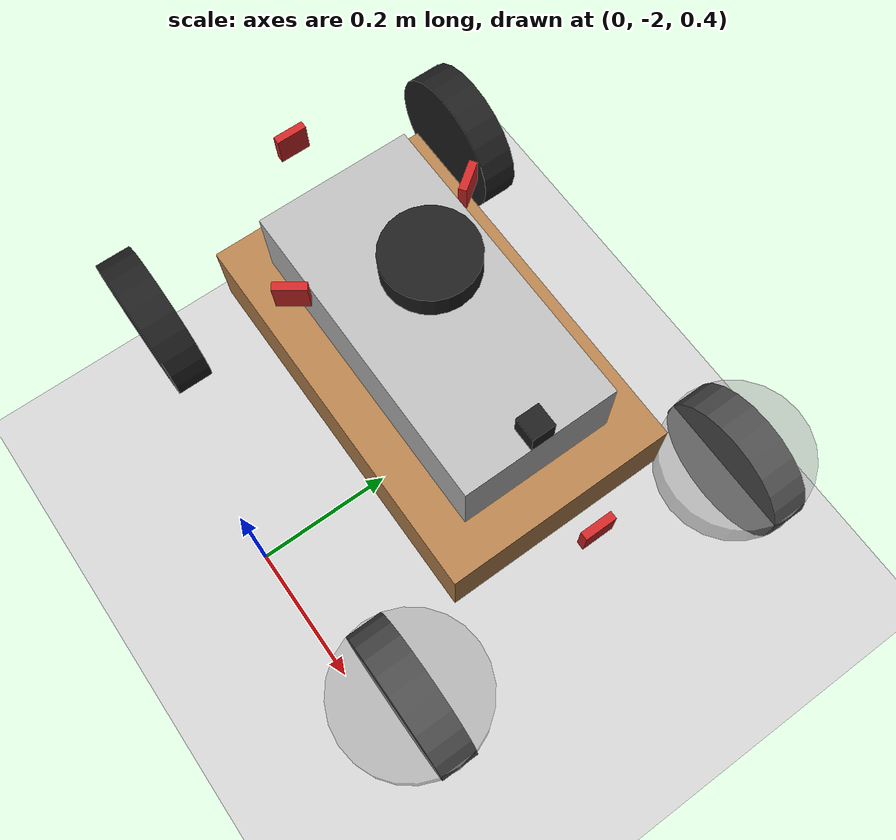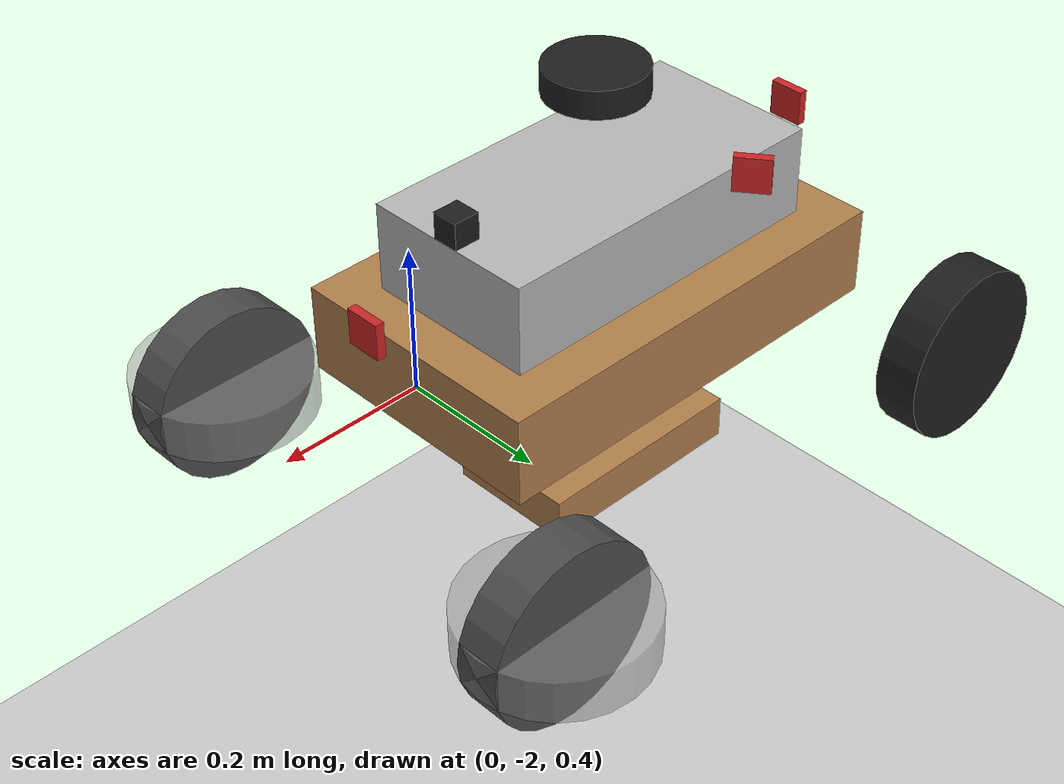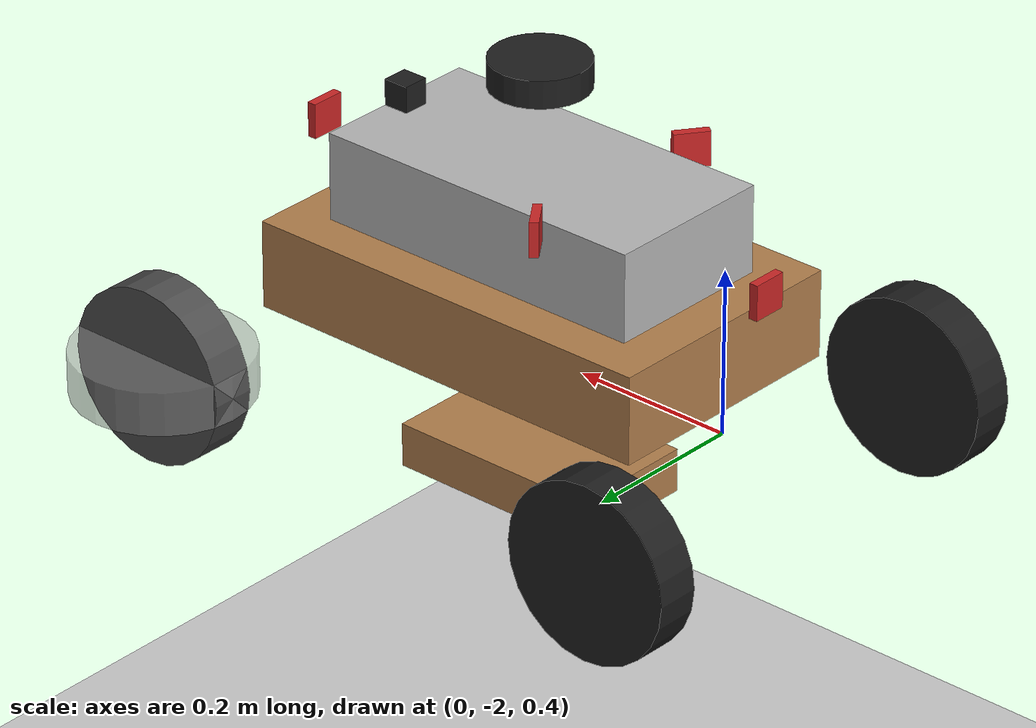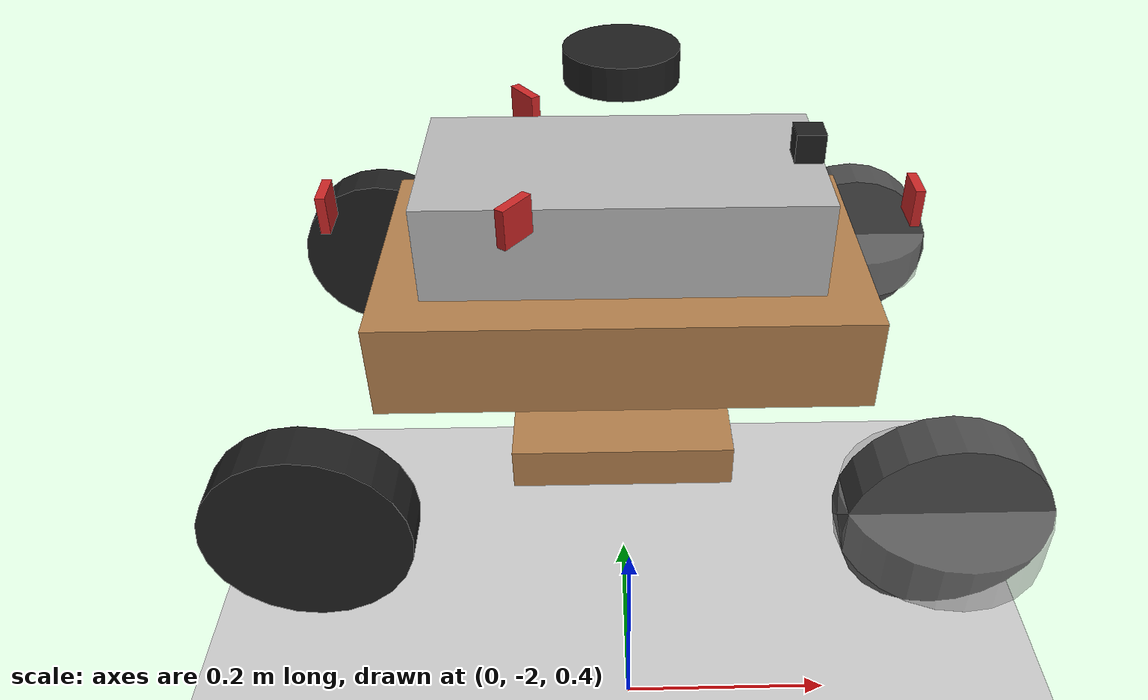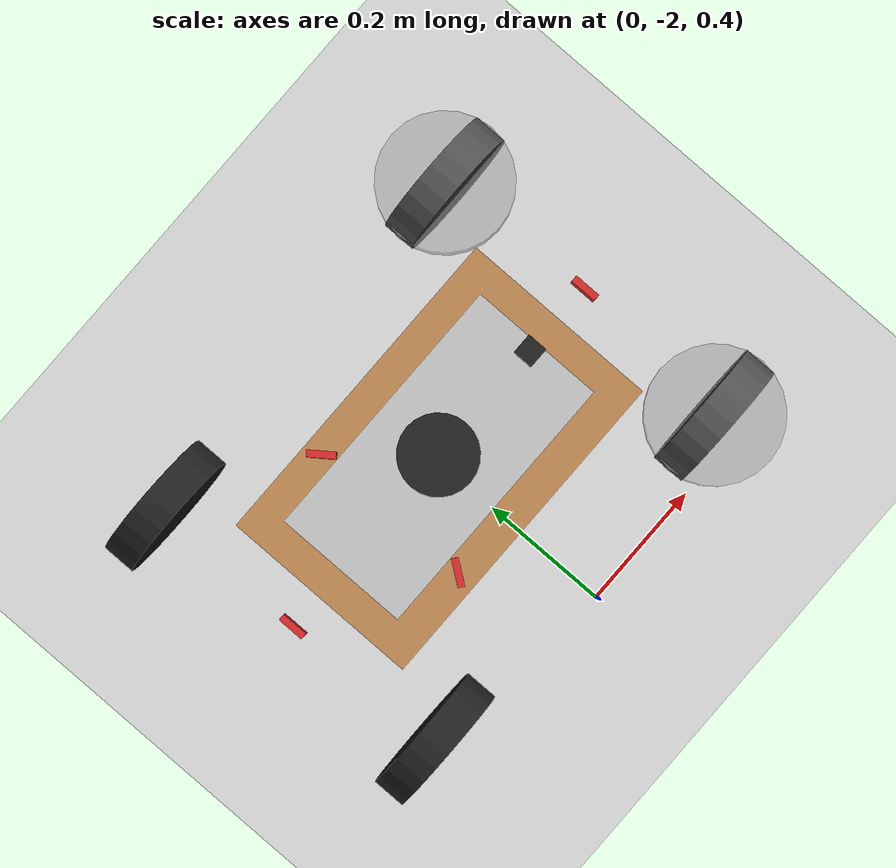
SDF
<sdf version="1.6">
 <world name="default">
  <include><uri>model://ground_plane</uri></include>
  <include><uri>model://sun</uri></include>
  <scene><shadows>false</shadows></scene>
  <physics type="ode">
   <real_time_update_rate>1000.0</real_time_update_rate>
   <max_step_size>0.001</max_step_size>
   <real_time_factor>1</real_time_factor>
   <ode>
    <solver>
     <type>quick</type>
     <iters>150</iters>
     <precon_iters>0</precon_iters>
     <sor>1.400000</sor>
     <use_dynamic_moi_rescaling>1</use_dynamic_moi_rescaling>
    </solver>
    <constraints>
     <cfm>0.00001</cfm>
     <erp>0.2</erp>
     <contact_max_correcting_vel>2000.000000</contact_max_correcting_vel>
     <contact_surface_layer>0.01000</contact_surface_layer>
    </constraints>
   </ode>
  </physics>
  <include><pose>0 -1.7 0.5 0.0 0.0 0</pose><uri>model://dorothy_ackermann</uri></include>
 </world>
</sdf>

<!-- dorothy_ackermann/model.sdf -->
<sdf version='1.7'>
  <model name='dorothy'>
    <link name='base_footprint'>
      <inertial>
        <pose>0 0 0 0 -0 0</pose>
        <mass>1</mass>
        <inertia>
          <ixx>0.00208333</ixx>
          <ixy>0</ixy>
          <ixz>0</ixz>
          <iyy>0.00541667</iyy>
          <iyz>0</iyz>
          <izz>0.00541667</izz>
        </inertia>
      </inertial>
      <visual name='base_footprint_visual'>
        <pose>0 0 0 0 -0 0</pose>
        <geometry>
          <box>
            <size>0.25 0.15 0.05</size>
          </box>
        </geometry>
        <material>
          <script>
            <name>Gazebo/Wood</name>
            <uri>file://media/materials/scripts/gazebo.material</uri>
          </script>
        </material>
      </visual>
    </link>
    <joint name='footprint_joint' type='fixed'>
      <pose relative_to='base_footprint'>0 0 0.2 0 0 -3.14159</pose>
      <parent>base_footprint</parent>
      <child>base_link</child>
      <axis>
        <dynamics>
          <spring_reference>0</spring_reference>
          <spring_stiffness>0</spring_stiffness>
        </dynamics>
        <xyz>0 0 1</xyz>
        <limit>
          <lower>-1e+16</lower>
          <upper>1e+16</upper>
        </limit>
      </axis>
      <physics>
        <ode>
          <limit>
            <cfm>0</cfm>
            <erp>0.2</erp>
          </limit>
        </ode>
      </physics>
    </joint>
    <link name='base_link'>
      <pose relative_to='footprint_joint'>0 0 0 0 -0 0</pose>
      <inertial>
        <pose>0 0 0 0 -0 0</pose>
        <mass>8</mass>
        <inertia>
          <ixx>0.0666667</ixx>
          <ixy>0</ixy>
          <ixz>0</ixz>
          <iyy>0.173333</iyy>
          <iyz>0</iyz>
          <izz>0.173333</izz>
        </inertia>
      </inertial>
      <collision name='base_link_collision'>
        <pose>0 0 0 0 -0 0</pose>
        <geometry>
          <box>
            <size>0.5 0.3 0.1</size>
          </box>
        </geometry>
        <surface>
          <contact>
            <ode/>
          </contact>
          <friction>
            <ode/>
          </friction>
        </surface>
      </collision>
      <visual name='base_link_visual'>
        <pose>0 0 0 0 -0 0</pose>
        <geometry>
          <box>
            <size>0.5 0.3 0.1</size>
          </box>
        </geometry>
        <material>
          <script>
            <name>Gazebo/Wood</name>
            <uri>file://media/materials/scripts/gazebo.material</uri>
          </script>
        </material>
      </visual>
    </link>
    <joint name='bl_axle' type='revolute'>
      <pose relative_to='base_link'>0.3 -0.25 -0.1 1.5708 -0 0</pose>
      <parent>base_link</parent>
      <child>bl_1</child>
      <axis>
        <xyz>0 0 1</xyz>
        <limit>
          <effort>20</effort>
          <velocity>20</velocity>
          <lower>-1e+16</lower>
          <upper>1e+16</upper>
        </limit>
        <dynamics>
          <spring_reference>0</spring_reference>
          <spring_stiffness>0</spring_stiffness>
        </dynamics>
      </axis>
    </joint>
    <link name='bl_1'>
      <pose relative_to='bl_axle'>0 0 0 0 -0 0</pose>
      <inertial>
        <pose>0 0 0 0 -0 0</pose>
        <mass>0.3</mass>
        <inertia>
          <ixx>0.0008125</ixx>
          <ixy>0</ixy>
          <ixz>0</ixz>
          <iyy>0.0008125</iyy>
          <iyz>0</iyz>
          <izz>0.0015</izz>
        </inertia>
      </inertial>
      <collision name='bl_1_collision'>
        <pose>0 0 0 0 -0 0</pose>
        <geometry>
          <cylinder>
            <length>0.05</length>
            <radius>0.1</radius>
          </cylinder>
        </geometry>
        <surface>
          <contact>
            <ode>
              <kp>100000</kp>
              <kd>10</kd>
            </ode>
          </contact>
          <friction>
            <ode>
              <mu>1</mu>
              <mu2>1</mu2>
            </ode>
          </friction>
        </surface>
      </collision>
      <visual name='bl_1_visual'>
        <pose>0 0 0 0 -0 0</pose>
        <geometry>
          <cylinder>
            <length>0.05</length>
            <radius>0.1</radius>
          </cylinder>
        </geometry>
        <material>
          <script>
            <name>Gazebo/Black</name>
            <uri>file://media/materials/scripts/gazebo.material</uri>
          </script>
        </material>
      </visual>
      <self_collide>1</self_collide>
      <slip1>100</slip1>
    </link>
    <joint name='br_axle' type='revolute'>
      <pose relative_to='base_link'>0.3 0.25 -0.1 1.5708 -0 0</pose>
      <parent>base_link</parent>
      <child>br_1</child>
      <axis>
        <xyz>0 0 1</xyz>
        <limit>
          <effort>20</effort>
          <velocity>20</velocity>
          <lower>-1e+16</lower>
          <upper>1e+16</upper>
        </limit>
        <dynamics>
          <spring_reference>0</spring_reference>
          <spring_stiffness>0</spring_stiffness>
        </dynamics>
      </axis>
    </joint>
    <link name='br_1'>
      <pose relative_to='br_axle'>0 0 0 0 -0 0</pose>
      <inertial>
        <pose>0 0 0 0 -0 0</pose>
        <mass>0.3</mass>
        <inertia>
          <ixx>0.0008125</ixx>
          <ixy>0</ixy>
          <ixz>0</ixz>
          <iyy>0.0008125</iyy>
          <iyz>0</iyz>
          <izz>0.0015</izz>
        </inertia>
      </inertial>
      <collision name='br_1_collision'>
        <pose>0 0 0 0 -0 0</pose>
        <geometry>
          <cylinder>
            <length>0.05</length>
            <radius>0.1</radius>
          </cylinder>
        </geometry>
        <surface>
          <contact>
            <ode>
              <kp>100000</kp>
              <kd>10</kd>
            </ode>
          </contact>
          <friction>
            <ode>
              <mu>1</mu>
              <mu2>1</mu2>
            </ode>
          </friction>
        </surface>
      </collision>
      <visual name='br_1_visual'>
        <pose>0 0 0 0 -0 0</pose>
        <geometry>
          <cylinder>
            <length>0.05</length>
            <radius>0.1</radius>
          </cylinder>
        </geometry>
        <material>
          <script>
            <name>Gazebo/Black</name>
            <uri>file://media/materials/scripts/gazebo.material</uri>
          </script>
        </material>
      </visual>
      <self_collide>1</self_collide>
      <slip1>100</slip1>
    </link>
    <joint name='l_steer' type='revolute'>
      <pose relative_to='base_link'>-0.3 -0.25 -0.1 0 -0 0</pose>
      <parent>base_link</parent>
      <child>l_steer_1</child>
      <axis>
        <xyz>0 0 1</xyz>
        <limit>
          <lower>-0.95</lower>
          <upper>0.95</upper>
          <effort>100</effort>
          <velocity>100</velocity>
        </limit>
        <dynamics>
          <damping>0</damping>
          <friction>1</friction>
          <spring_reference>0</spring_reference>
          <spring_stiffness>0</spring_stiffness>
        </dynamics>
      </axis>
    </joint>
    <link name='l_steer_1'>
      <pose relative_to='l_steer'>0 0 0 0 -0 0</pose>
      <inertial>
        <pose>0.003381 0 0.02162 0 -0 0</pose>
        <mass>1</mass>
        <inertia>
          <ixx>1</ixx>
          <ixy>0</ixy>
          <ixz>0</ixz>
          <iyy>1</iyy>
          <iyz>0</iyz>
          <izz>1</izz>
        </inertia>
      </inertial>
      <visual name='l_steer_1_visual'>
        <pose>0 0 0 0 -0 0</pose>
        <geometry>
          <cylinder>
            <length>0.05</length>
            <radius>0.1</radius>
          </cylinder>
        </geometry>
        <material>
          <script>
            <name>Gazebo/GreyTransparent</name>
            <uri>file://media/materials/scripts/gazebo.material</uri>
          </script>
        </material>
      </visual>
      <self_collide>1</self_collide>
    </link>
    <joint name='fl_axle' type='revolute'>
      <pose relative_to='l_steer_1'>0 0 0 1.5708 -0 0</pose>
      <parent>l_steer_1</parent>
      <child>fl_1</child>
      <axis>
        <xyz>0 0 1</xyz>
        <limit>
          <effort>20</effort>
          <velocity>20</velocity>
          <lower>-1e+16</lower>
          <upper>1e+16</upper>
        </limit>
        <dynamics>
          <spring_reference>0</spring_reference>
          <spring_stiffness>0</spring_stiffness>
        </dynamics>
      </axis>
    </joint>
    <link name='fl_1'>
      <pose relative_to='fl_axle'>0 0 0 0 -0 0</pose>
      <inertial>
        <pose>0 0 0 0 -0 0</pose>
        <mass>0.3</mass>
        <inertia>
          <ixx>0.0008125</ixx>
          <ixy>0</ixy>
          <ixz>0</ixz>
          <iyy>0.0008125</iyy>
          <iyz>0</iyz>
          <izz>0.0015</izz>
        </inertia>
      </inertial>
      <collision name='fl_1_collision'>
        <pose>0 0 0 0 -0 0</pose>
        <geometry>
          <cylinder>
            <length>0.05</length>
            <radius>0.1</radius>
          </cylinder>
        </geometry>
        <surface>
          <contact>
            <ode>
              <kp>100000</kp>
              <kd>10</kd>
            </ode>
          </contact>
          <friction>
            <ode>
              <mu>1</mu>
              <mu2>1</mu2>
            </ode>
          </friction>
        </surface>
      </collision>
      <visual name='fl_1_visual'>
        <pose>0 0 0 0 -0 0</pose>
        <geometry>
          <cylinder>
            <length>0.05</length>
            <radius>0.1</radius>
          </cylinder>
        </geometry>
        <material>
          <script>
            <name>Gazebo/DarkGrey</name>
            <uri>file://media/materials/scripts/gazebo.material</uri>
          </script>
        </material>
      </visual>
      <self_collide>1</self_collide>
      <slip1>100</slip1>
    </link>
    <joint name='pod_joint' type='fixed'>
      <pose relative_to='base_link'>0 0 0.1 0 0 -3.14159</pose>
      <parent>base_link</parent>
      <child>pod</child>
      <axis>
        <dynamics>
          <spring_reference>0</spring_reference>
          <spring_stiffness>0</spring_stiffness>
        </dynamics>
        <xyz>0 0 1</xyz>
        <limit>
          <lower>-1e+16</lower>
          <upper>1e+16</upper>
        </limit>
      </axis>
      <physics>
        <ode>
          <limit>
            <cfm>0</cfm>
            <erp>0.2</erp>
          </limit>
        </ode>
      </physics>
    </joint>
    <link name='pod'>
      <pose relative_to='pod_joint'>0 0 0 0 -0 0</pose>
      <inertial>
        <pose>0 0 0 0 -0 0</pose>
        <mass>0.1</mass>
        <inertia>
          <ixx>0.001</ixx>
          <ixy>0</ixy>
          <ixz>0</ixz>
          <iyy>0.001</iyy>
          <iyz>0</iyz>
          <izz>0.001</izz>
        </inertia>
      </inertial>
      <collision name='pod_collision'>
        <pose>0 0 0 0 -0 0</pose>
        <geometry>
          <box>
            <size>0.4 0.2 0.1</size>
          </box>
        </geometry>
      </collision>
      <visual name='pod_visual'>
        <pose>0 0 0 0 -0 0</pose>
        <geometry>
          <box>
            <size>0.4 0.2 0.1</size>
          </box>
        </geometry>
      </visual>
    </link>
    <joint name='cam_joint_front' type='fixed'>
      <pose relative_to='pod'>0.3 0 0 0 -0 0</pose>
      <parent>pod</parent>
      <child>camera_front</child>
      <axis>
        <dynamics>
          <spring_reference>0</spring_reference>
          <spring_stiffness>0</spring_stiffness>
        </dynamics>
        <xyz>0 0 1</xyz>
        <limit>
          <lower>-1e+16</lower>
          <upper>1e+16</upper>
        </limit>
      </axis>
      <physics>
        <ode>
          <limit>
            <cfm>0</cfm>
            <erp>0.2</erp>
          </limit>
        </ode>
      </physics>
    </joint>
    <link name='camera_front'>
      <pose relative_to='cam_joint_front'>0 0 0 0 -0 0</pose>
      <inertial>
        <pose>0 0 0 0 -0 0</pose>
        <mass>0.01</mass>
        <inertia>
          <ixx>0.0001</ixx>
          <ixy>0</ixy>
          <ixz>0</ixz>
          <iyy>0.0001</iyy>
          <iyz>0</iyz>
          <izz>0.0001</izz>
        </inertia>
      </inertial>
      <collision name='camera_front_collision'>
        <pose>0 0 0 0 -0 0</pose>
        <geometry>
          <box>
            <size>0.01 0.04 0.04</size>
          </box>
        </geometry>
        <surface>
          <contact>
            <ode/>
          </contact>
          <friction>
            <ode/>
          </friction>
        </surface>
      </collision>
      <visual name='camera_front_visual'>
        <pose>0 0 0 0 -0 0</pose>
        <geometry>
          <box>
            <size>0.01 0.04 0.04</size>
          </box>
        </geometry>
        <material>
          <script>
            <name>Gazebo/Red</name>
            <uri>file://media/materials/scripts/gazebo.material</uri>
          </script>
        </material>
      </visual>
      <sensor name='camera_front_sensor' type='camera'>
        <camera>
          <horizontal_fov>1.5</horizontal_fov>
          <image>
            <width>640</width>
            <height>480</height>
          </image>
          <clip>
            <near>0.1</near>
            <far>1000</far>
          </clip>
        </camera>
        <always_on>1</always_on>
        <update_rate>10</update_rate>
        <visualize>0</visualize>
        <camera name='camera_front'>
          <distortion>
            <k1>0</k1>
            <k2>0</k2>
            <k3>0</k3>
            <p1>0</p1>
            <p2>0</p2>
            <center>0.5 0.5</center>
          </distortion>
          <horizontal_fov>1.047</horizontal_fov>
          <image>
            <width>320</width>
            <height>240</height>
          </image>
          <clip>
            <near>0.1</near>
            <far>100</far>
          </clip>
        </camera>
        <plugin name='camera_controller' filename='libgazebo_ros_camera.so'>
          <ros>
            <namespace/>
          </ros>
          <hack_baseline>0.07</hack_baseline>
          <frame_name>camera_front</frame_name>
        </plugin>
      </sensor>
    </link>
    <joint name='cam_joint_left' type='fixed'>
      <pose relative_to='pod'>-0.1 0.12 0.05 0 -0 0.628318</pose>
      <parent>pod</parent>
      <child>camera_left</child>
      <axis>
        <dynamics>
          <spring_reference>0</spring_reference>
          <spring_stiffness>0</spring_stiffness>
        </dynamics>
        <xyz>0 0 1</xyz>
        <limit>
          <lower>-1e+16</lower>
          <upper>1e+16</upper>
        </limit>
      </axis>
      <physics>
        <ode>
          <limit>
            <cfm>0</cfm>
            <erp>0.2</erp>
          </limit>
        </ode>
      </physics>
    </joint>
    <link name='camera_left'>
      <pose relative_to='cam_joint_left'>0 0 0 0 -0 0</pose>
      <inertial>
        <pose>0 0 0 0 -0 0</pose>
        <mass>0.01</mass>
        <inertia>
          <ixx>0.0001</ixx>
          <ixy>0</ixy>
          <ixz>0</ixz>
          <iyy>0.0001</iyy>
          <iyz>0</iyz>
          <izz>0.0001</izz>
        </inertia>
      </inertial>
      <collision name='camera_left_collision'>
        <pose>0 0 0 0 -0 0</pose>
        <geometry>
          <box>
            <size>0.01 0.04 0.04</size>
          </box>
        </geometry>
        <surface>
          <contact>
            <ode/>
          </contact>
          <friction>
            <ode/>
          </friction>
        </surface>
      </collision>
      <visual name='camera_left_visual'>
        <pose>0 0 0 0 -0 0</pose>
        <geometry>
          <box>
            <size>0.01 0.04 0.04</size>
          </box>
        </geometry>
        <material>
          <script>
            <name>Gazebo/Red</name>
            <uri>file://media/materials/scripts/gazebo.material</uri>
          </script>
        </material>
      </visual>
      <sensor name='camera_left_sensor' type='camera'>
        <camera>
          <horizontal_fov>1.5</horizontal_fov>
          <image>
            <width>640</width>
            <height>480</height>
          </image>
          <clip>
            <near>0.1</near>
            <far>1000</far>
          </clip>
        </camera>
        <always_on>1</always_on>
        <update_rate>10</update_rate>
        <visualize>0</visualize>
        <camera name='camera_left'>
          <distortion>
            <k1>0</k1>
            <k2>0</k2>
            <k3>0</k3>
            <p1>0</p1>
            <p2>0</p2>
            <center>0.5 0.5</center>
          </distortion>
          <horizontal_fov>1.047</horizontal_fov>
          <image>
            <width>320</width>
            <height>240</height>
          </image>
          <clip>
            <near>0.1</near>
            <far>100</far>
          </clip>
        </camera>
        <plugin name='camera_controller' filename='libgazebo_ros_camera.so'>
          <ros>
            <namespace/>
          </ros>
          <hack_baseline>0.07</hack_baseline>
          <frame_name>camera_left</frame_name>
        </plugin>
      </sensor>
    </link>
    <joint name='cam_joint_rear' type='fixed'>
      <pose relative_to='pod'>-0.3 0 0 0 -0 3.14159</pose>
      <parent>pod</parent>
      <child>camera_rear</child>
      <axis>
        <dynamics>
          <spring_reference>0</spring_reference>
          <spring_stiffness>0</spring_stiffness>
        </dynamics>
        <xyz>0 0 1</xyz>
        <limit>
          <lower>-1e+16</lower>
          <upper>1e+16</upper>
        </limit>
      </axis>
      <physics>
        <ode>
          <limit>
            <cfm>0</cfm>
            <erp>0.2</erp>
          </limit>
        </ode>
      </physics>
    </joint>
    <link name='camera_rear'>
      <pose relative_to='cam_joint_rear'>0 0 0 0 -0 0</pose>
      <inertial>
        <pose>0 0 0 0 -0 0</pose>
        <mass>0.01</mass>
        <inertia>
          <ixx>0.0001</ixx>
          <ixy>0</ixy>
          <ixz>0</ixz>
          <iyy>0.0001</iyy>
          <iyz>0</iyz>
          <izz>0.0001</izz>
        </inertia>
      </inertial>
      <collision name='camera_rear_collision'>
        <pose>0 0 0 0 -0 0</pose>
        <geometry>
          <box>
            <size>0.01 0.04 0.04</size>
          </box>
        </geometry>
        <surface>
          <contact>
            <ode/>
          </contact>
          <friction>
            <ode/>
          </friction>
        </surface>
      </collision>
      <visual name='camera_rear_visual'>
        <pose>0 0 0 0 -0 0</pose>
        <geometry>
          <box>
            <size>0.01 0.04 0.04</size>
          </box>
        </geometry>
        <material>
          <script>
            <name>Gazebo/Red</name>
            <uri>file://media/materials/scripts/gazebo.material</uri>
          </script>
        </material>
      </visual>
      <sensor name='camera_rear_sensor' type='camera'>
        <camera>
          <horizontal_fov>1.5</horizontal_fov>
          <image>
            <width>640</width>
            <height>480</height>
          </image>
          <clip>
            <near>0.1</near>
            <far>1000</far>
          </clip>
        </camera>
        <always_on>1</always_on>
        <update_rate>10</update_rate>
        <visualize>0</visualize>
        <camera name='camera_rear'>
          <distortion>
            <k1>0</k1>
            <k2>0</k2>
            <k3>0</k3>
            <p1>0</p1>
            <p2>0</p2>
            <center>0.5 0.5</center>
          </distortion>
          <horizontal_fov>1.047</horizontal_fov>
          <image>
            <width>320</width>
            <height>240</height>
          </image>
          <clip>
            <near>0.1</near>
            <far>100</far>
          </clip>
        </camera>
        <plugin name='camera_controller' filename='libgazebo_ros_camera.so'>
          <ros>
            <namespace/>
          </ros>
          <hack_baseline>0.07</hack_baseline>
          <frame_name>camera_rear</frame_name>
        </plugin>
      </sensor>
    </link>
    <joint name='cam_joint_right' type='fixed'>
      <pose relative_to='pod'>-0.1 -0.12 0.05 0 0 -0.628318</pose>
      <parent>pod</parent>
      <child>camera_right</child>
      <axis>
        <dynamics>
          <spring_reference>0</spring_reference>
          <spring_stiffness>0</spring_stiffness>
        </dynamics>
        <xyz>0 0 1</xyz>
        <limit>
          <lower>-1e+16</lower>
          <upper>1e+16</upper>
        </limit>
      </axis>
      <physics>
        <ode>
          <limit>
            <cfm>0</cfm>
            <erp>0.2</erp>
          </limit>
        </ode>
      </physics>
    </joint>
    <link name='camera_right'>
      <pose relative_to='cam_joint_right'>0 0 0 0 -0 0</pose>
      <inertial>
        <pose>0 0 0 0 -0 0</pose>
        <mass>0.01</mass>
        <inertia>
          <ixx>0.0001</ixx>
          <ixy>0</ixy>
          <ixz>0</ixz>
          <iyy>0.0001</iyy>
          <iyz>0</iyz>
          <izz>0.0001</izz>
        </inertia>
      </inertial>
      <collision name='camera_right_collision'>
        <pose>0 0 0 0 -0 0</pose>
        <geometry>
          <box>
            <size>0.01 0.04 0.04</size>
          </box>
        </geometry>
        <surface>
          <contact>
            <ode/>
          </contact>
          <friction>
            <ode/>
          </friction>
        </surface>
      </collision>
      <visual name='camera_right_visual'>
        <pose>0 0 0 0 -0 0</pose>
        <geometry>
          <box>
            <size>0.01 0.04 0.04</size>
          </box>
        </geometry>
        <material>
          <script>
            <name>Gazebo/Red</name>
            <uri>file://media/materials/scripts/gazebo.material</uri>
          </script>
        </material>
      </visual>
      <sensor name='camera_right_sensor' type='camera'>
        <camera>
          <horizontal_fov>1.5</horizontal_fov>
          <image>
            <width>640</width>
            <height>480</height>
          </image>
          <clip>
            <near>0.1</near>
            <far>1000</far>
          </clip>
        </camera>
        <always_on>1</always_on>
        <update_rate>10</update_rate>
        <visualize>0</visualize>
        <camera name='camera_right'>
          <distortion>
            <k1>0</k1>
            <k2>0</k2>
            <k3>0</k3>
            <p1>0</p1>
            <p2>0</p2>
            <center>0.5 0.5</center>
          </distortion>
          <horizontal_fov>1.047</horizontal_fov>
          <image>
            <width>320</width>
            <height>240</height>
          </image>
          <clip>
            <near>0.1</near>
            <far>100</far>
          </clip>
        </camera>
        <plugin name='camera_controller' filename='libgazebo_ros_camera.so'>
          <ros>
            <namespace/>
          </ros>
          <hack_baseline>0.07</hack_baseline>
          <frame_name>camera_right</frame_name>
        </plugin>
      </sensor>
    </link>
    <joint name='imu_joint' type='fixed'>
      <pose relative_to='pod'>0.185 0 0.065 0 -0 3.14</pose>
      <parent>pod</parent>
      <child>imu</child>
      <axis>
        <dynamics>
          <spring_reference>0</spring_reference>
          <spring_stiffness>0</spring_stiffness>
        </dynamics>
        <xyz>0 0 1</xyz>
        <limit>
          <lower>-1e+16</lower>
          <upper>1e+16</upper>
        </limit>
      </axis>
      <physics>
        <ode>
          <limit>
            <cfm>0</cfm>
            <erp>0.2</erp>
          </limit>
        </ode>
      </physics>
    </joint>
    <link name='imu'>
      <pose relative_to='imu_joint'>0 0 0 0 -0 0</pose>
      <inertial>
        <pose>0 0 0 0 -0 0</pose>
        <mass>0.114</mass>
        <inertia>
          <ixx>0.001</ixx>
          <ixy>0</ixy>
          <ixz>0</ixz>
          <iyy>0.001</iyy>
          <iyz>0</iyz>
          <izz>0.001</izz>
        </inertia>
      </inertial>
      <visual name='imu_visual'>
        <pose>0 0 0 0 -0 0</pose>
        <geometry>
          <box>
            <size>0.03 0.03 0.03</size>
          </box>
        </geometry>
        <material>
          <script>
            <name>Gazebo/FlatBlack</name>
            <uri>file://media/materials/scripts/gazebo.material</uri>
          </script>
        </material>
      </visual>
      <sensor name='my_imu' type='imu'>
        <always_on>1</always_on>
        <update_rate>30</update_rate>
        <plugin name='my_imu_plugin' filename='libgazebo_ros_imu_sensor.so'>
          <ros>
            <namespace>/imu</namespace>
            <remapping>~/out:=data</remapping>
          </ros>
        </plugin>
      </sensor>
    </link>
    <joint name='scan_joint' type='fixed'>
      <pose relative_to='pod'>0 0 0.15 0 -0 3.14</pose>
      <parent>pod</parent>
      <child>laser</child>
      <axis>
        <dynamics>
          <spring_reference>0</spring_reference>
          <spring_stiffness>0</spring_stiffness>
        </dynamics>
        <xyz>0 0 1</xyz>
        <limit>
          <lower>-1e+16</lower>
          <upper>1e+16</upper>
        </limit>
      </axis>
      <physics>
        <ode>
          <limit>
            <cfm>0</cfm>
            <erp>0.2</erp>
          </limit>
        </ode>
      </physics>
    </joint>
    <link name='laser'>
      <pose relative_to='scan_joint'>0 0 0 0 -0 0</pose>
      <inertial>
        <pose>0 0 0 0 -0 0</pose>
        <mass>0.114</mass>
        <inertia>
          <ixx>0.001</ixx>
          <ixy>0</ixy>
          <ixz>0</ixz>
          <iyy>0.001</iyy>
          <iyz>0</iyz>
          <izz>0.001</izz>
        </inertia>
      </inertial>
      <collision name='laser_collision'>
        <pose>0.015 0 -0.0065 0 -0 0</pose>
        <geometry>
          <cylinder>
            <length>0.0315</length>
            <radius>0.055</radius>
          </cylinder>
        </geometry>
        <surface>
          <contact>
            <ode/>
          </contact>
          <friction>
            <ode/>
          </friction>
        </surface>
      </collision>
      <visual name='laser_visual'>
        <pose>0 0 0 0 -0 0</pose>
        <geometry>
          <cylinder>
            <length>0.0315</length>
            <radius>0.055</radius>
          </cylinder>
        </geometry>
        <material>
          <script>
            <name>Gazebo/FlatBlack</name>
            <uri>file://media/materials/scripts/gazebo.material</uri>
          </script>
        </material>
      </visual>
      <sensor name='lidar_sensor' type='ray'>
        <pose>0 0 0 0 -0 0</pose>
        <visualize>0</visualize>
        <update_rate>15</update_rate>
        <ray>
          <scan>
            <horizontal>
              <samples>360</samples>
              <resolution>1</resolution>
              <min_angle>0</min_angle>
              <max_angle>6.28319</max_angle>
            </horizontal>
          </scan>
          <range>
            <min>0.12</min>
            <max>10</max>
            <resolution>0.05</resolution>
          </range>
          <noise>
            <type>gaussian</type>
            <mean>0</mean>
            <stddev>0.01</stddev>
          </noise>
        </ray>
        <plugin name='scan' filename='libgazebo_ros_ray_sensor.so'>
          <ros>
            <remapping>~/out:=scan</remapping>
          </ros>
          <output_type>sensor_msgs/LaserScan</output_type>
          <frame_name>laser</frame_name>
        </plugin>
      </sensor>
    </link>
    <joint name='r_steer' type='revolute'>
      <pose relative_to='base_link'>-0.3 0.25 -0.1 0 -0 0</pose>
      <parent>base_link</parent>
      <child>r_steer_1</child>
      <axis>
        <xyz>0 0 1</xyz>
        <limit>
          <lower>-0.95</lower>
          <upper>0.95</upper>
          <effort>100</effort>
          <velocity>100</velocity>
        </limit>
        <dynamics>
          <damping>0</damping>
          <friction>1</friction>
          <spring_reference>0</spring_reference>
          <spring_stiffness>0</spring_stiffness>
        </dynamics>
      </axis>
    </joint>
    <link name='r_steer_1'>
      <pose relative_to='r_steer'>0 0 0 0 -0 0</pose>
      <inertial>
        <pose>0.003381 0 0.02162 0 -0 0</pose>
        <mass>1</mass>
        <inertia>
          <ixx>1</ixx>
          <ixy>0</ixy>
          <ixz>0</ixz>
          <iyy>1</iyy>
          <iyz>0</iyz>
          <izz>1</izz>
        </inertia>
      </inertial>
      <visual name='r_steer_1_visual'>
        <pose>0 0 0 0 -0 0</pose>
        <geometry>
          <cylinder>
            <length>0.05</length>
            <radius>0.1</radius>
          </cylinder>
        </geometry>
        <material>
          <script>
            <name>Gazebo/GreyTransparent</name>
            <uri>file://media/materials/scripts/gazebo.material</uri>
          </script>
        </material>
      </visual>
      <self_collide>1</self_collide>
    </link>
    <joint name='fr_axle' type='revolute'>
      <pose relative_to='r_steer_1'>0 0 0 1.5708 -0 0</pose>
      <parent>r_steer_1</parent>
      <child>fr_1</child>
      <axis>
        <xyz>0 0 1</xyz>
        <limit>
          <effort>20</effort>
          <velocity>20</velocity>
          <lower>-1e+16</lower>
          <upper>1e+16</upper>
        </limit>
        <dynamics>
          <spring_reference>0</spring_reference>
          <spring_stiffness>0</spring_stiffness>
        </dynamics>
      </axis>
    </joint>
    <link name='fr_1'>
      <pose relative_to='fr_axle'>0 0 0 0 -0 0</pose>
      <inertial>
        <pose>0 0 0 0 -0 0</pose>
        <mass>0.3</mass>
        <inertia>
          <ixx>0.0008125</ixx>
          <ixy>0</ixy>
          <ixz>0</ixz>
          <iyy>0.0008125</iyy>
          <iyz>0</iyz>
          <izz>0.0015</izz>
        </inertia>
      </inertial>
      <collision name='fr_1_collision'>
        <pose>0 0 0 0 -0 0</pose>
        <geometry>
          <cylinder>
            <length>0.05</length>
            <radius>0.1</radius>
          </cylinder>
        </geometry>
        <surface>
          <contact>
            <ode>
              <kp>100000</kp>
              <kd>10</kd>
            </ode>
          </contact>
          <friction>
            <ode>
              <mu>1</mu>
              <mu2>1</mu2>
            </ode>
          </friction>
        </surface>
      </collision>
      <visual name='fr_1_visual'>
        <pose>0 0 0 0 -0 0</pose>
        <geometry>
          <cylinder>
            <length>0.05</length>
            <radius>0.1</radius>
          </cylinder>
        </geometry>
        <material>
          <script>
            <name>Gazebo/DarkGrey</name>
            <uri>file://media/materials/scripts/gazebo.material</uri>
          </script>
        </material>
      </visual>
      <self_collide>1</self_collide>
      <slip1>100</slip1>
    </link>
    <plugin name='ackermann_drive' filename='libgazebo_ros_ackermann_drive.so'>
      <ros>
        <remapping>cmd_vel:=cmd_vel</remapping>
        <remapping>odom:=wheel/odometry</remapping>
        <remapping>distance:=distance</remapping>
      </ros>
      <update_rate>60.0</update_rate>
      <front_left_joint>fl_axle</front_left_joint>
      <front_right_joint>fr_axle</front_right_joint>
      <rear_left_joint>bl_axle</rear_left_joint>
      <rear_right_joint>br_axle</rear_right_joint>
      <left_steering_joint>l_steer</left_steering_joint>
      <right_steering_joint>r_steer</right_steering_joint>
      <max_steer>0.6</max_steer>
      <max_steering_angle>2</max_steering_angle>
      <max_speed>10</max_speed>
      <left_steering_pid_gain>100 0 17</left_steering_pid_gain>
      <left_steering_i_range>0 0</left_steering_i_range>
      <right_steering_pid_gain>100 0 17</right_steering_pid_gain>
      <right_steering_i_range>0 0</right_steering_i_range>
      <linear_velocity_pid_gain>1 0 0</linear_velocity_pid_gain>
      <linear_velocity_i_range>0 0</linear_velocity_i_range>
      <publish_odom>1</publish_odom>
      <publish_odom_tf>0</publish_odom_tf>
      <publish_wheel_tf>0</publish_wheel_tf>
      <publish_distance>0</publish_distance>
      <odometry_frame>odom</odometry_frame>
      <robot_base_frame>base_footprint</robot_base_frame>
    </plugin>
    <static>0</static>
    <plugin name='dorothy2_joint_state' filename='libgazebo_ros_joint_state_publisher.so'>
      <ros>
        <remapping>~/out:=joint_states</remapping>
      </ros>
      <update_rate>30</update_rate>
      <joint_name>fl_axle</joint_name>
      <joint_name>fr_axle</joint_name>
      <joint_name>br_axle</joint_name>
      <joint_name>bl_axle</joint_name>
      <joint_name>r_steer</joint_name>
      <joint_name>l_steer</joint_name>
    </plugin>
  </model>
</sdf>
